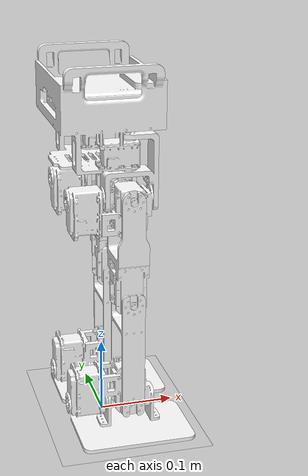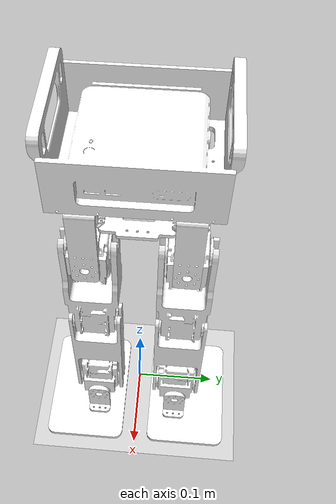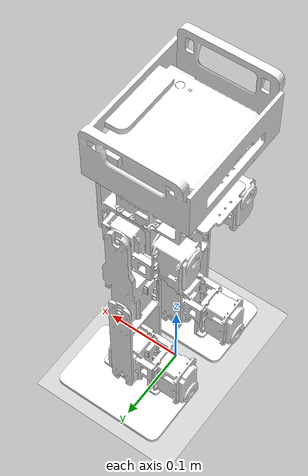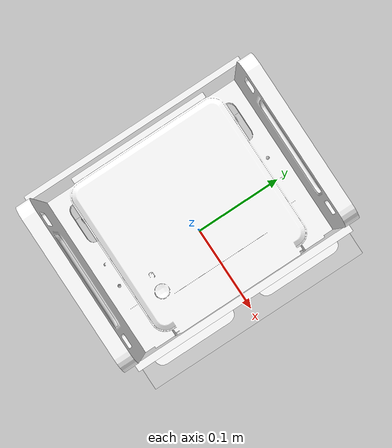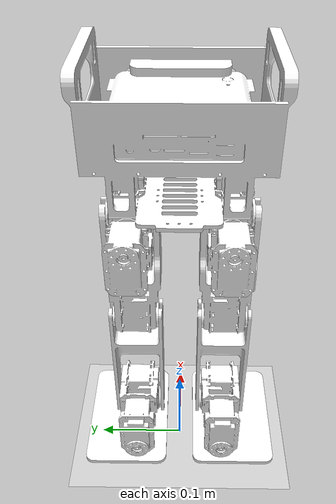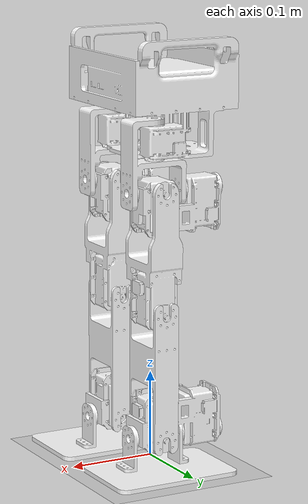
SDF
<?xml version="1.0" ?>
<sdf version="1.6">
  <world name="B_kubot_world">
		<physics name="default_physics" default="0" type="ode">
		 <max_step_size>0.001</max_step_size> //최대 1ms로 계산 가능
		 <real_time_factor>1</real_time_factor> //실시간과 비슷 ex)0.5>0.5배속
		 <real_time_update_rate>1000</real_time_update_rate> //1초안에 1000번 계산, 1000hz
		 <ode> //open dynamic engine을 사용하는 물리환경
			<solver>
			 <type>quick</type>
			 <iters>100</iters>
			 <sor>1.0</sor>
			 <use_dynamic_moi_rescaling>false</use_dynamic_moi_rescaling>
			</solver>
		 </ode>
	</physics>

	<include>
	 <uri>model://ground_plane</uri>
	</include>

	<include>
	 <uri>model://sun</uri>
	</include>

	<include>
	 <uri>model://B_kubot</uri>
	 <pose frame=''>0 0 0.427 0 0 0</pose> //x,y,z,roll,pitch,yaw
	       <plugin name="B_kubot_plugin.cc" filename="libbeginner_kubot_pkgs.so"/>
	</include>
 </world>
</sdf>

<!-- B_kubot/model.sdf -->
<sdf version='1.7'>
  <model name='B_kubot'>

    <link name='base_link'>
      <inertial>
        <pose>-0 -0 0 0 -0 0</pose>
        <mass>1.186</mass>
        <inertia>
          <ixx>0.00098526</ixx>
          <ixy>0</ixy>
          <ixz>0</ixz>
          <iyy>0.00082381</iyy>
          <iyz>0</iyz>
          <izz>0.0015446</izz>
        </inertia>
      </inertial>
      <visual name='base_link_visual'>
        <pose>0 0 0 0 -0 0</pose>
        <geometry>
          <mesh>
            <scale>1 1 1</scale>
            <uri>model://B_kubot/meshes/base_link.STL</uri>
          </mesh>
        </geometry>
        <material>
         <ambient>255 255 255 1</ambient>
         <diffuse>1 1 1 1</diffuse>
         <emissive>0 0 0 1</emissive>
         <specular>0 0 0 0</specular>
        </material>
      </visual>

      <sensor name='IMU' type="imu">
    	<pose relative_to='base_link'>-0 -0 0 0 -0 0</pose>
    	<imu>
    	<angular_velocity>
    		<x> <noise type='none'> </noise> </x>
    		<y> <noise type='none'> </noise> </y>
    		<z> <noise type='none'> </noise> </z>
    	</angular_velocity>

    	<linear_acceleration>
    		<x> <noise type='none'> </noise> </x>
    		<y> <noise type='none'> </noise> </y>
    		<z> <noise type='none'> </noise> </z>
    	</linear_acceleration>
    	</imu>
    	<always_on>1</always_on>
    	<update_rate>1000</update_rate>
    	<visualize>true</visualize>
    	</sensor>

    </link>

    <joint name='L_Hip_yaw_joint' type='revolute'>
      <pose relative_to='base_link'>0.0235 0.05 -0.10464 0 -0 0</pose>
      <parent>base_link</parent>
      <child>L_Hip_yaw</child>
      <axis>
        <xyz>0 0 1</xyz>
        <limit>
          <effort>-1</effort>
          <velocity>-1</velocity>
        </limit>
        <dynamics>
          <spring_reference>0</spring_reference>
          <spring_stiffness>0</spring_stiffness>
        </dynamics>
      </axis>
    </joint>
    <link name='L_Hip_yaw'>
      <pose relative_to='L_Hip_yaw_joint'>0 0 0 0 -0 0</pose>
      <inertial>
        <pose>0.009874 0 0.034357 0 -0 0</pose>
        <mass>0.056</mass>
        <inertia>
          <ixx>2.6496e-05</ixx>
          <ixy>0</ixy>
          <ixz>0</ixz>
          <iyy>3.4893e-05</iyy>
          <iyz>0</iyz>
          <izz>1.3648e-05</izz>
        </inertia>
      </inertial>
      <visual name='L_Hip_yaw_visual'>
        <pose>0 0 0 0 -0 0</pose>
        <geometry>
          <mesh>
            <scale>1 1 1</scale>
            <uri>model://B_kubot/meshes/L_Hip_yaw.STL</uri>
          </mesh>
        </geometry>
        <material>
         <ambient>0 0 0 1</ambient>
         <diffuse>1 1 1 1</diffuse>
         <emissive>0 0 0 1</emissive>
         <specular>0 0 0 0</specular>
        </material>
      </visual>
    </link>
    <joint name='L_Hip_roll_joint' type='revolute'>
      <pose relative_to='L_Hip_yaw'>0 0 0 0 -0 0</pose>
      <parent>L_Hip_yaw</parent>
      <child>L_Hip_roll</child>
      <axis>
        <xyz>1 0 0</xyz>
        <limit>
          <effort>-1</effort>
          <velocity>-1</velocity>
        </limit>
        <dynamics>
          <spring_reference>0</spring_reference>
          <spring_stiffness>0</spring_stiffness>
        </dynamics>
      </axis>
    </joint>
    <link name='L_Hip_roll'>
      <pose relative_to='L_Hip_roll_joint'>0 0 0 0 -0 0</pose>
      <inertial>
        <pose>-0.025734 3.9e-05 -0.015188 0 -0 0</pose>
        <mass>0.185</mass>
        <inertia>
          <ixx>5.7097e-05</ixx>
          <ixy>0</ixy>
          <ixz>0</ixz>
          <iyy>5.645e-05</iyy>
          <iyz>0</iyz>
          <izz>3.5595e-05</izz>
        </inertia>
      </inertial>
      <visual name='L_Hip_roll_visual'>
        <pose>0 0 0 0 -0 0</pose>
        <geometry>
          <mesh>
            <scale>1 1 1</scale>
            <uri>model://B_kubot/meshes/L_Hip_roll.STL</uri>
          </mesh>
        </geometry>
        <material>
         <ambient>255 0 0 1</ambient>
         <diffuse>1 1 1 1</diffuse>
         <emissive>0 0 0 1</emissive>
         <specular>0 0 0 0</specular>
        </material>
      </visual>
    </link>
    <joint name='L_Hip_pitch_joint' type='revolute'>
      <pose relative_to='L_Hip_roll'>0 0 0 0 -0 0</pose>
      <parent>L_Hip_roll</parent>
      <child>L_Hip_pitch</child>
      <axis>
        <xyz>0 1 0</xyz>
        <limit>
          <effort>-1</effort>
          <velocity>-1</velocity>
        </limit>
        <dynamics>
          <spring_reference>0</spring_reference>
          <spring_stiffness>0</spring_stiffness>
        </dynamics>
      </axis>
    </joint>
    <link name='L_Hip_pitch'>
      <pose relative_to='L_Hip_pitch_joint'>0 0 0 0 -0 0</pose>
      <inertial>
        <pose>2e-06 0.000169 -0.096826 0 -0 0</pose>
        <mass>0.304</mass>
        <inertia>
          <ixx>0.00012605</ixx>
          <ixy>0</ixy>
          <ixz>0</ixz>
          <iyy>9.2705e-05</iyy>
          <iyz>0</iyz>
          <izz>6.2851e-05</izz>
        </inertia>
      </inertial>
      <visual name='L_Hip_pitch_visual'>
        <pose>0 0 0 0 -0 0</pose>
        <geometry>
          <mesh>
            <scale>1 1 1</scale>
            <uri>model://B_kubot/meshes/L_Hip_pitch.STL</uri>
          </mesh>
        </geometry>
        <material>
         <ambient>255 0 0 1</ambient>
         <diffuse>1 1 1 1</diffuse>
         <emissive>0 0 0 1</emissive>
         <specular>0 0 0 0</specular>
        </material>
      </visual>
    </link>
    <joint name='L_Knee_joint' type='revolute'>
      <pose relative_to='L_Hip_pitch'>-0.00032 0 -0.138 0 -0 0</pose>
      <parent>L_Hip_pitch</parent>
      <child>L_Knee</child>
      <axis>
        <xyz>0 1 0</xyz>
        <limit>
          <effort>-1</effort>
          <velocity>-1</velocity>
        </limit>
        <dynamics>
          <spring_reference>0</spring_reference>
          <spring_stiffness>0</spring_stiffness>
        </dynamics>
      </axis>
    </joint>
    <link name='L_Knee'>
      <pose relative_to='L_Knee_joint'>0 0 0 0 -0 0</pose>
      <inertial>
        <pose>0.002471 0.0002 -0.064983 0 -0 0</pose>
        <mass>0.053</mass>
        <inertia>
          <ixx>0.00012155</ixx>
          <ixy>0</ixy>
          <ixz>0</ixz>
          <iyy>9.3136e-05</iyy>
          <iyz>0</iyz>
          <izz>3.7874e-05</izz>
        </inertia>
      </inertial>
      <visual name='L_Knee_visual'>
        <pose>0 0 0 0 -0 0</pose>
        <geometry>
          <mesh>
            <scale>1 1 1</scale>
            <uri>model://B_kubot/meshes/L_Knee.STL</uri>
          </mesh>
        </geometry>
        <material>
         <ambient>0 0 255 1</ambient>
         <diffuse>1 1 1 1</diffuse>
         <emissive>0 0 0 1</emissive>
         <specular>0 0 0 0</specular>
        </material>
      </visual>
    </link>
    <joint name='L_Ankle_pitch_joint' type='revolute'>
      <pose relative_to='L_Knee'>0.00032 0.0001 -0.143 0 -0 0</pose>
      <parent>L_Knee</parent>
      <child>L_Ankle_pitch</child>
      <axis>
        <xyz>0 1 0</xyz>
        <limit>
          <effort>-1</effort>
          <velocity>-1</velocity>
        </limit>
        <dynamics>
          <spring_reference>0</spring_reference>
          <spring_stiffness>0</spring_stiffness>
        </dynamics>
      </axis>
    </joint>
    <link name='L_Ankle_pitch'>
      <pose relative_to='L_Ankle_pitch_joint'>0 0 0 0 -0 0</pose>
      <inertial>
        <pose>-0.024331 5.1e-05 0.014723 0 -0 0</pose>
        <mass>0.229</mass>
        <inertia>
          <ixx>7.8092e-05</ixx>
          <ixy>0</ixy>
          <ixz>0</ixz>
          <iyy>7.7114e-05</iyy>
          <iyz>0</iyz>
          <izz>4.8232e-05</izz>
        </inertia>
      </inertial>
      <visual name='L_Ankle_pitch_visual'>
        <pose>0 0 0 0 -0 0</pose>
        <geometry>
          <mesh>
            <scale>1 1 1</scale>
            <uri>model://B_kubot/meshes/L_Ankle_pitch.STL</uri>
          </mesh>
        </geometry>
        <material>
         <ambient>0 0 255 1</ambient>
         <diffuse>1 1 1 1</diffuse>
         <emissive>0 0 0 1</emissive>
         <specular>0 0 0 0</specular>
        </material>
      </visual>
    </link>
    <joint name='L_Ankle_roll_joint' type='revolute'>
      <pose relative_to='L_Ankle_pitch'>0 0 0 0 -0 0</pose>
      <parent>L_Ankle_pitch</parent>
      <child>L_Ankle_roll</child>
      <axis>
        <xyz>1 0 0</xyz>
        <limit>
          <effort>-1</effort>
          <velocity>-1</velocity>
        </limit>
        <dynamics>
          <spring_reference>0</spring_reference>
          <spring_stiffness>0</spring_stiffness>
        </dynamics>
      </axis>
    </joint>
    <link name='L_Ankle_roll'>
      <pose relative_to='L_Ankle_roll_joint'>0 0 0 0 -0 0</pose>
      <inertial>
        <pose>-0.029387 -0 -0.015903 0 -0 0</pose>
        <mass>0.016</mass>
        <inertia>
          <ixx>1.6806e-06</ixx>
          <ixy>0</ixy>
          <ixz>0</ixz>
          <iyy>1.3489e-06</iyy>
          <iyz>0</iyz>
          <izz>4.405e-07</izz>
        </inertia>
      </inertial>
      <visual name='L_Ankle_roll_visual'>
        <pose>0 0 0 0 -0 0</pose>
        <geometry>
          <mesh>
            <scale>1 1 1</scale>
            <uri>model://B_kubot/meshes/L_Ankle_roll.STL</uri>
          </mesh>
        </geometry>
        <material>
         <ambient>0 0 255 1</ambient>
         <diffuse>1 1 1 1</diffuse>
         <emissive>0 0 0 1</emissive>
         <specular>0 0 0 0</specular>
        </material>
      </visual>
    </link>
    <joint name='L_Foot_joint' type='fixed'>
      <pose relative_to='L_Ankle_roll'>-0.00032 -0.0001 -0.04 0 -0 0</pose>
      <parent>L_Ankle_roll</parent>
      <child>L_Foot</child>
    </joint>
    <link name='L_Foot'>
      <pose relative_to='L_Foot_joint'>0 0 0 0 -0 0</pose>
      <inertial>
        <pose>0.000978 0.016837 0.002503 0 -0 0</pose>
        <mass>0.2</mass>
        <inertia>
          <ixx>6.1573e-05</ixx>
          <ixy>0</ixy>
          <ixz>0</ixz>
          <iyy>0.00013809</iyy>
          <iyz>0</iyz>
          <izz>0.00019935</izz>
        </inertia>
      </inertial>
      <collision name='L_Foot_collision'>

        <pose>0.00095 0.017 0.0015 0 -0 0</pose>
        <geometry>
	 <box>
	 <size>0.15 0.1 0.004</size>
	 </box>
        </geometry>

        <surface>
        <contact>
            <ode>
              <kp>10000000</kp>
              <kd>10000</kd>
              <max_vel>0.1</max_vel>
              <min_depth>0.001</min_depth>
            </ode>
          </contact>
        </surface>
      </collision>

      <visual name='L_Foot_visual'>
        <pose>0 0 0 0 -0 0</pose>
        <geometry>
          <mesh>
            <scale>1 1 1</scale>
            <uri>model://B_kubot/meshes/L_Foot.STL</uri>
          </mesh>
        </geometry>
        <material>
         <ambient>255 255 255 1</ambient>
         <diffuse>1 1 1 1</diffuse>
         <emissive>0 0 0 1</emissive>
         <specular>0 0 0 0</specular>
        </material>
      </visual>
    </link>
    <joint name='R_Hip_yaw_joint' type='revolute'>
      <pose relative_to='base_link'>0.0235 -0.0500 -0.10464 0 -0 0</pose>
      <parent>base_link</parent>
      <child>R_Hip_yaw</child>
      <axis>
        <xyz>0 0 1</xyz>
        <limit>
          <effort>-1</effort>
          <velocity>-1</velocity>
        </limit>
        <dynamics>
          <spring_reference>0</spring_reference>
          <spring_stiffness>0</spring_stiffness>
        </dynamics>
      </axis>
    </joint>
    <link name='R_Hip_yaw'>
      <pose relative_to='R_Hip_yaw_joint'>0 0 0 0 -0 0</pose>
      <inertial>
        <pose>0.009874 -0 0.034357 0 -0 0</pose>
        <mass>0.056</mass>
        <inertia>
          <ixx>2.6496e-05</ixx>
          <ixy>0</ixy>
          <ixz>0</ixz>
          <iyy>3.4893e-05</iyy>
          <iyz>0</iyz>
          <izz>1.3648e-05</izz>
        </inertia>
      </inertial>
      <visual name='R_Hip_yaw_visual'>
        <pose>0 0 0 0 -0 0</pose>
        <geometry>
          <mesh>
            <scale>1 1 1</scale>
            <uri>model://B_kubot/meshes/R_Hip_yaw.STL</uri>
          </mesh>
        </geometry>
        <material>
         <ambient>0 0 0 1</ambient>
         <diffuse>1 1 1 1</diffuse>
         <emissive>0 0 0 1</emissive>
         <specular>0 0 0 0</specular>
        </material>
      </visual>
    </link>
    <joint name='R_Hip_roll_joint' type='revolute'>
      <pose relative_to='R_Hip_yaw'>0 0 0 0 -0 0</pose>
      <parent>R_Hip_yaw</parent>
      <child>R_Hip_roll</child>
      <axis>
        <xyz>1 0 0</xyz>
        <limit>
          <effort>-1</effort>
          <velocity>-1</velocity>
        </limit>
        <dynamics>
          <spring_reference>0</spring_reference>
          <spring_stiffness>0</spring_stiffness>
        </dynamics>
      </axis>
    </joint>
    <link name='R_Hip_roll'>
      <pose relative_to='R_Hip_roll_joint'>0 0 0 0 -0 0</pose>
      <inertial>
        <pose>-0.025734 -3.9e-05 -0.015188 0 -0 0</pose>
        <mass>0.185</mass>
        <inertia>
          <ixx>5.7097e-05</ixx>
          <ixy>0</ixy>
          <ixz>0</ixz>
          <iyy>5.645e-05</iyy>
          <iyz>0</iyz>
          <izz>3.5595e-05</izz>
        </inertia>
      </inertial>
      <visual name='R_Hip_roll_visual'>
        <pose>0 0 0 0 -0 0</pose>
        <geometry>
          <mesh>
            <scale>1 1 1</scale>
            <uri>model://B_kubot/meshes/R_Hip_roll.STL</uri>
          </mesh>
        </geometry>
        <material>
         <ambient>255 0 0 1</ambient>
         <diffuse>1 1 1 1</diffuse>
         <emissive>0 0 0 1</emissive>
         <specular>0 0 0 0</specular>
        </material>
      </visual>
    </link>
    <joint name='R_Hip_pitch_joint' type='revolute'>
      <pose relative_to='R_Hip_roll'>0 0 0 0 -0 0</pose>
      <parent>R_Hip_roll</parent>
      <child>R_Hip_pitch</child>
      <axis>
        <xyz>0 1 0</xyz>
        <limit>
          <effort>-1</effort>
          <velocity>-1</velocity>
        </limit>
        <dynamics>
          <spring_reference>0</spring_reference>
          <spring_stiffness>0</spring_stiffness>
        </dynamics>
      </axis>
    </joint>
    <link name='R_Hip_pitch'>
      <pose relative_to='R_Hip_pitch_joint'>0 0 0 0 -0 0</pose>
      <inertial>
        <pose>-2e-06 -0.000169 -0.096826 0 -0 0</pose>
        <mass>0.304</mass>
        <inertia>
          <ixx>0.00012605</ixx>
          <ixy>0</ixy>
          <ixz>0</ixz>
          <iyy>9.2705e-05</iyy>
          <iyz>0</iyz>
          <izz>6.2851e-05</izz>
        </inertia>
      </inertial>
      <visual name='R_Hip_pitch_visual'>
        <pose>0 0 0 0 -0 0</pose>
        <geometry>
          <mesh>
            <scale>1 1 1</scale>
            <uri>model://B_kubot/meshes/R_Hip_pitch.STL</uri>
          </mesh>
        </geometry>
        <material>
         <ambient>255 0 0 1</ambient>
         <diffuse>1 1 1 1</diffuse>
         <emissive>0 0 0 1</emissive>
         <specular>0 0 0 0</specular>
        </material>
      </visual>
    </link>
    <joint name='R_Knee_joint' type='revolute'>
      <pose relative_to='R_Hip_pitch'>-0.00032 0 -0.138 0 -0 0</pose>
      <parent>R_Hip_pitch</parent>
      <child>R_Knee</child>
      <axis>
        <xyz>0 1 0</xyz>
        <limit>
          <effort>-1</effort>
          <velocity>-1</velocity>
        </limit>
        <dynamics>
          <spring_reference>0</spring_reference>
          <spring_stiffness>0</spring_stiffness>
        </dynamics>
      </axis>
    </joint>
    <link name='R_Knee'>
      <pose relative_to='R_Knee_joint'>0 0 0 0 -0 0</pose>
      <inertial>
        <pose>0.002471 -0.0002 -0.064983 0 -0 0</pose>
        <mass>0.053</mass>
        <inertia>
          <ixx>0.00012155</ixx>
          <ixy>0</ixy>
          <ixz>0</ixz>
          <iyy>9.3136e-05</iyy>
          <iyz>0</iyz>
          <izz>3.7874e-05</izz>
        </inertia>
      </inertial>
      <visual name='R_Knee_visual'>
        <pose>0 0 0 0 -0 0</pose>
        <geometry>
          <mesh>
            <scale>1 1 1</scale>
            <uri>model://B_kubot/meshes/R_Knee.STL</uri>
          </mesh>
        </geometry>
        <material>
         <ambient>0 0 255 1</ambient>
         <diffuse>1 1 1 1</diffuse>
         <emissive>0 0 0 1</emissive>
         <specular>0 0 0 1</specular>
        </material>
      </visual>
    </link>
    <joint name='R_Ankle_pitch_joint' type='revolute'>
      <pose relative_to='R_Knee'>0.00032 -0.0001 -0.143 0 -0 0</pose>
      <parent>R_Knee</parent>
      <child>R_Ankle_pitch</child>
      <axis>
        <xyz>0 1 0</xyz>
        <limit>
          <effort>-1</effort>
          <velocity>-1</velocity>
        </limit>
        <dynamics>
          <spring_reference>0</spring_reference>
          <spring_stiffness>0</spring_stiffness>
        </dynamics>
      </axis>
    </joint>
    <link name='R_Ankle_pitch'>
      <pose relative_to='R_Ankle_pitch_joint'>0 0 0 0 -0 0</pose>
      <inertial>
        <pose>-0.024334 -5.4e-05 0.014723 0 -0 0</pose>
        <mass>0.229</mass>
        <inertia>
          <ixx>7.8092e-05</ixx>
          <ixy>0</ixy>
          <ixz>0</ixz>
          <iyy>7.7114e-05</iyy>
          <iyz>0</iyz>
          <izz>4.8232e-05</izz>
        </inertia>
      </inertial>
      <visual name='R_Ankle_pitch_visual'>
        <pose>0 0 0 0 -0 0</pose>
        <geometry>
          <mesh>
            <scale>1 1 1</scale>
            <uri>model://B_kubot/meshes/R_Ankle_pitch.STL</uri>
          </mesh>
        </geometry>
        <material>
         <ambient>0 0 255 1</ambient>
         <diffuse>1 1 1 1</diffuse>
         <emissive>0 0 0 1</emissive>
         <specular>0 0 0 0</specular>
        </material>
      </visual>
    </link>
    <joint name='R_Ankle_roll_joint' type='revolute'>
      <pose relative_to='R_Ankle_pitch'>0 0 0 0 -0 0</pose>
      <parent>R_Ankle_pitch</parent>
      <child>R_Ankle_roll</child>
      <axis>
        <xyz>1 0 0</xyz>
        <limit>
          <effort>-1</effort>
          <velocity>-1</velocity>
        </limit>
        <dynamics>
          <spring_reference>0</spring_reference>
          <spring_stiffness>0</spring_stiffness>
        </dynamics>
      </axis>
    </joint>

    <link name='R_Ankle_roll'>
      <pose relative_to='R_Ankle_roll_joint'>0 0 0 0 -0 0</pose>
      <inertial>
        <pose>-0.029387 -0 -0.015903 0 -0 0</pose>
        <mass>0.016</mass>
        <inertia>
          <ixx>1.6806e-06</ixx>
          <ixy>0</ixy>
          <ixz>0</ixz>
          <iyy>1.3489e-06</iyy>
          <iyz>0</iyz>
          <izz>4.405e-07</izz>
        </inertia>
      </inertial>
      <visual name='R_Ankle_roll_visual'>
        <pose>0 0 0 0 -0 0</pose>
        <geometry>
          <mesh>
            <scale>1 1 1</scale>
            <uri>model://B_kubot/meshes/R_Ankle_roll.STL</uri>
          </mesh>
        </geometry>
        <material>
         <ambient>0 0 255 1</ambient>
         <diffuse>1 1 1 1</diffuse>
         <emissive>0 0 0 1</emissive>
         <specular>0 0 0 0</specular>
        </material>
      </visual>
    </link>
    <joint name='R_Foot_joint' type='fixed'>
      <pose relative_to='R_Ankle_roll'>-0.00032 0.0001 -0.04 0 -0 0</pose>
      <parent>R_Ankle_roll</parent>
      <child>R_Foot</child>
    </joint>
    <link name='R_Foot'>
      <pose relative_to='R_Foot_joint'>0 0 0 0 -0 0</pose>
      <inertial>
        <pose>0.001922 -0.016829 0.002503 0 -0 0</pose>
        <mass>0.20</mass>
        <inertia>
          <ixx>6.1584e-05</ixx>
          <ixy>0</ixy>
          <ixz>0</ixz>
          <iyy>0.00013813</iyy>
          <iyz>0</iyz>
          <izz>0.00019941</izz>
        </inertia>
      </inertial>
      <collision name='R_Foot_collision'>

        <pose>0.00095 -0.017 0.0015 0 -0 0</pose>
        <geometry>
	 <box>
	 <size>0.15 0.1 0.004</size>
	 </box>
        </geometry>
        <surface>
        <contact>
            <ode>
              <kp>10000000</kp>
              <kd>10000</kd>
              <max_vel>0.1</max_vel>
              <min_depth>0.001</min_depth>
            </ode>
          </contact>
        </surface>
      </collision>
      <visual name='R_Foot_visual'>
        <pose>0 0 0 0 -0 0</pose>
        <geometry>
          <mesh>
            <scale>1 1 1</scale>
            <uri>model://B_kubot/meshes/R_Foot.STL</uri>
          </mesh>
        </geometry>
        <material>
         <ambient>255 255 255 1</ambient>
         <diffuse>1 1 1 1</diffuse>
         <emissive>0 0 0 1</emissive>
         <specular>0 0 0 0</specular>
        </material>
      </visual>
    </link>
  </model>
</sdf>
